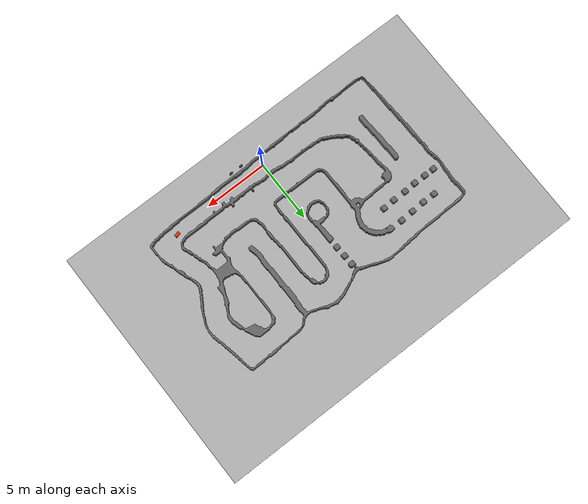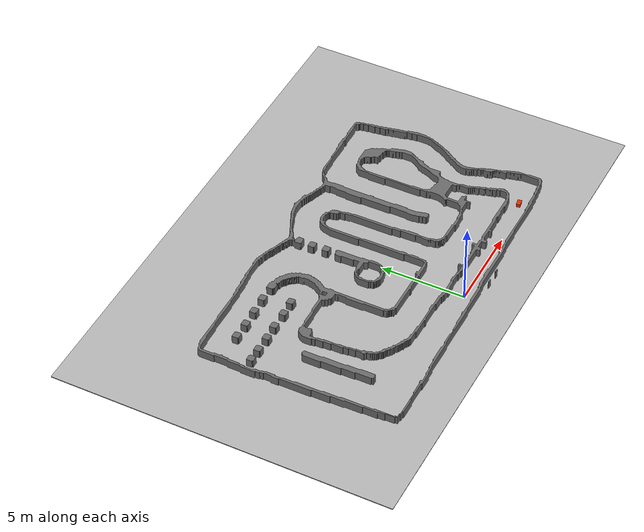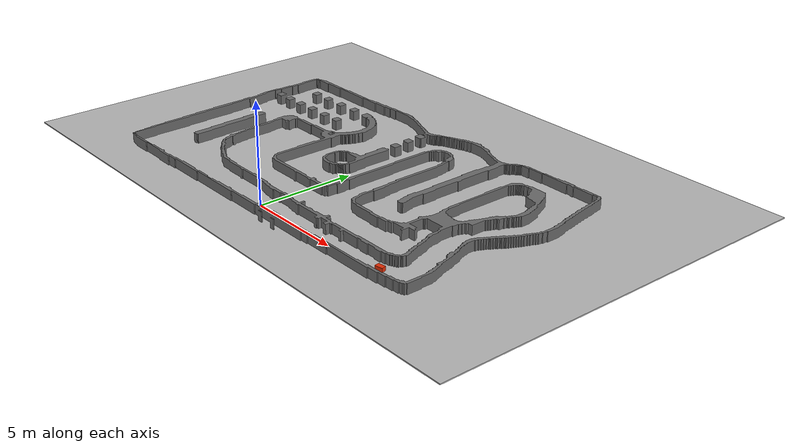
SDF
<?xml version="1.0"?>
<sdf version="1.6">
  <world name="point_lio_competition_h2h">
    <include><uri>model://sun</uri></include>
    <include><uri>model://point_lio_competition_track</uri></include>
    <gravity>0 0 -9.80665</gravity>
    <physics name="ode_physics" type="ode">
      <max_step_size>0.002</max_step_size><real_time_update_rate>500</real_time_update_rate><real_time_factor>1.0</real_time_factor>
      <ode><solver><type>quick</type><iters>80</iters><sor>1.3</sor></solver><constraints><cfm>0</cfm><erp>0.2</erp><contact_max_correcting_vel>0.1</contact_max_correcting_vel><contact_surface_layer>0.001</contact_surface_layer></constraints></ode>
    </physics>
    <scene><ambient>0.45 0.45 0.45 1</ambient><background>0.72 0.80 0.90 1</background><shadows>false</shadows></scene>
    <model name="opponent">
      <static>false</static><pose>8.05422 0.31922 0.15 0 0 0.16468</pose>
      <link name="body"><gravity>false</gravity><kinematic>true</kinematic>
        <inertial><mass>3.535</mass><inertia><ixx>0.018</ixx><iyy>0.052</iyy><izz>0.060</izz></inertia></inertial>
        <collision name="collision"><geometry><box><size>0.40 0.24 0.20</size></box></geometry></collision>
        <visual name="visual"><geometry><box><size>0.40 0.24 0.20</size></box></geometry><material><ambient>0.90 0.18 0.02 1</ambient><diffuse>0.90 0.18 0.02 1</diffuse></material></visual>
      </link>
    </model>
    <gui fullscreen="0"><camera name="track_overview"><pose>18 -15 27 0 0.72 2.25</pose><view_controller>orbit</view_controller></camera></gui>
  </world>
</sdf>

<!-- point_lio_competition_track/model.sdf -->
<sdf version="1.6">
  <model name="point_lio_competition_track">
    <static>true</static>

    <!-- The floor covers the complete 615 x 403 map at 0.05 m/cell. -->
    <link name="floor_link">
      <pose>0.157548 6.952436 -0.025 0 0 0</pose>
      <collision name="floor_collision">
        <geometry>
          <box>
            <size>30.75 20.15 0.05</size>
          </box>
        </geometry>
        <surface>
          <friction>
            <ode>
              <mu>1.4</mu>
              <mu2>1.4</mu2>
            </ode>
          </friction>
          <contact>
            <collide_bitmask>65535</collide_bitmask>
          </contact>
        </surface>
      </collision>
      <visual name="floor_visual">
        <cast_shadows>false</cast_shadows>
        <geometry>
          <box>
            <size>30.75 20.15 0.05</size>
          </box>
        </geometry>
        <material>
          <ambient>0.62 0.62 0.62 1</ambient>
          <diffuse>0.72 0.72 0.72 1</diffuse>
          <specular>0.05 0.05 0.05 1</specular>
        </material>
      </visual>
    </link>

    <!-- Vertices are already expressed in the Point-LIO map/world frame. -->
    <link name="walls_link">
      <collision name="walls_collision">
        <geometry>
          <mesh>
            <uri>model://point_lio_competition_track/meshes/walls.obj</uri>
          </mesh>
        </geometry>
        <surface>
          <friction>
            <ode>
              <mu>0.9</mu>
              <mu2>0.9</mu2>
            </ode>
          </friction>
          <contact>
            <collide_bitmask>65535</collide_bitmask>
            <ode>
              <kp>1000000</kp>
              <kd>10</kd>
              <max_vel>0.1</max_vel>
              <min_depth>0.001</min_depth>
            </ode>
          </contact>
        </surface>
      </collision>
      <visual name="walls_visual">
        <cast_shadows>false</cast_shadows>
        <geometry>
          <mesh>
            <uri>model://point_lio_competition_track/meshes/walls.obj</uri>
          </mesh>
        </geometry>
        <material>
          <ambient>0.34 0.34 0.34 1</ambient>
          <diffuse>0.42 0.42 0.42 1</diffuse>
          <specular>0.04 0.04 0.04 1</specular>
        </material>
      </visual>
    </link>
  </model>
</sdf>
